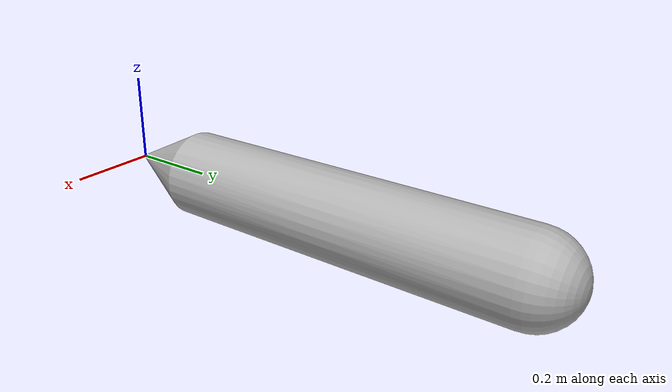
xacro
<?xml version="1.0" ?>
<robot name="sub_2" xmlns:xacro="http://www.ros.org/wiki/xacro">

<xacro:include filename="$(find sub_2_description)/urdf/materials.xacro" />
<xacro:include filename="$(find sub_2_description)/urdf/sub_2.trans" />
<xacro:include filename="$(find sub_2_description)/urdf/sub_2.gazebo" />
<link name="base_link">
  <inertial>
    <origin xyz="-1.5005358872692233e-17 0.593470691528565 -1.0759586897350778e-18" rpy="0 0 0"/>
    <mass value="2.098072441313959"/>
    <inertia ixx="0.18812" iyy="0.017976" izz="0.18812" ixy="-0.0" iyz="-0.0" ixz="-0.0"/>
  </inertial>
  <visual>
    <origin xyz="0 0 0" rpy="0 0 0"/>
    <geometry>
      <mesh filename="package://sub_2_description/meshes/base_link.stl" scale="0.001 0.001 0.001"/>
    </geometry>
    <material name="silver"/>
  </visual>
  <collision>
    <origin xyz="0 0 0" rpy="0 0 0"/>
    <geometry>
      <mesh filename="package://sub_2_description/meshes/base_link.stl" scale="0.001 0.001 0.001"/>
    </geometry>
  </collision>
</link>

</robot>

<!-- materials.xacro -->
<robot name="sub_2" xmlns:xacro="http://www.ros.org/wiki/xacro" >

<material name="silver">
  <color rgba="0.700 0.700 0.700 1.000"/>
</material>

</robot>

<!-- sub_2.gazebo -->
<robot name="sub_2" xmlns:xacro="http://www.ros.org/wiki/xacro" >

<xacro:property name="body_color" value="Gazebo/Silver" />

<gazebo>
  <plugin name="control" filename="libgazebo_ros_control.so"/>
</gazebo>
<gazebo reference="base_link">
  <material>${body_color}</material>
  <mu1>0.2</mu1>
  <mu2>0.2</mu2>
  <selfCollide>true</selfCollide>
  <gravity>true</gravity>
</gazebo>

</robot>
